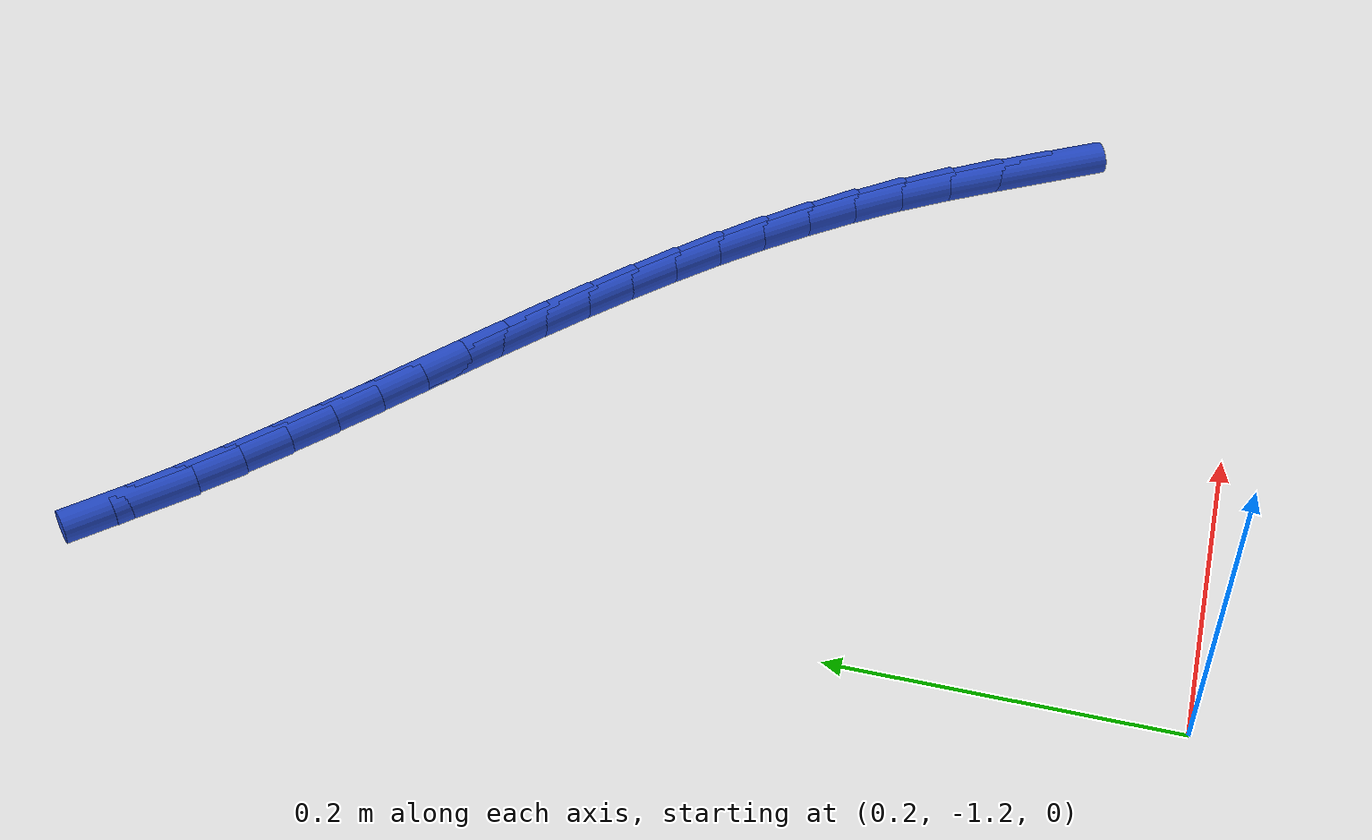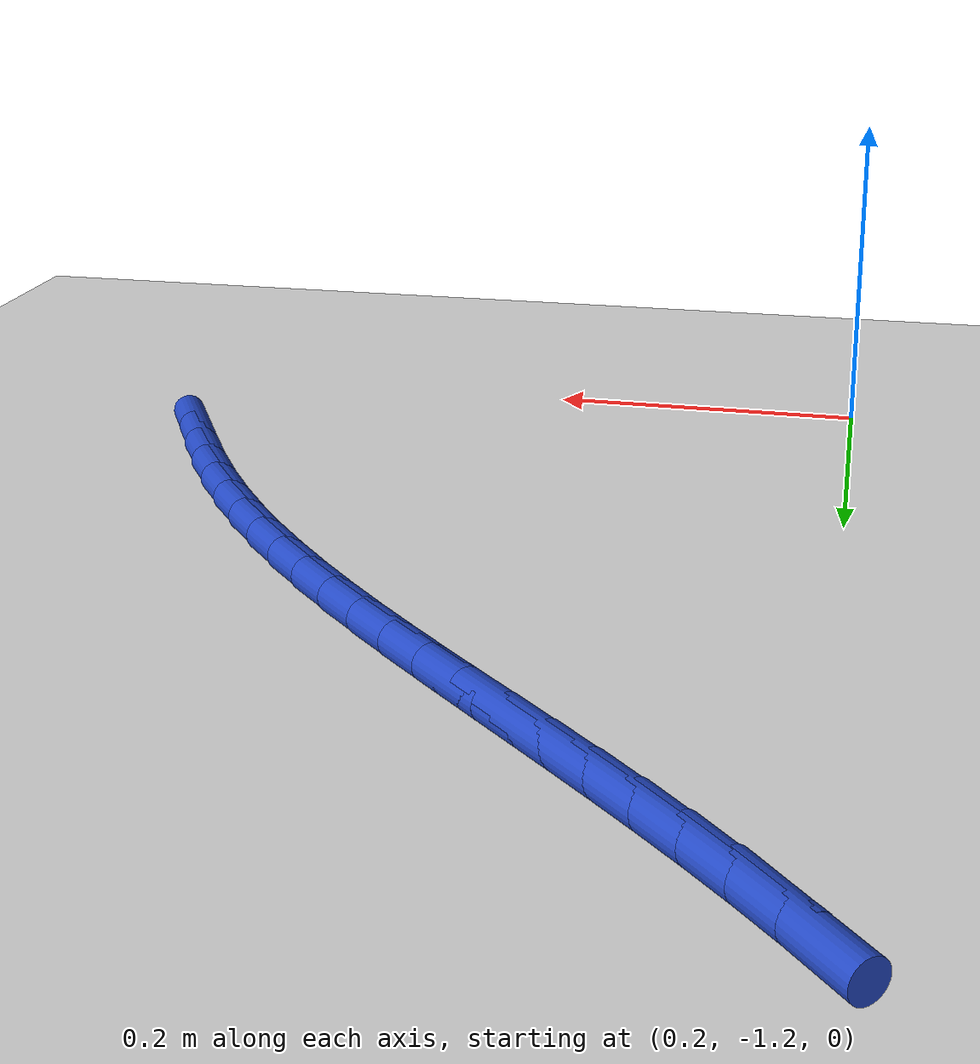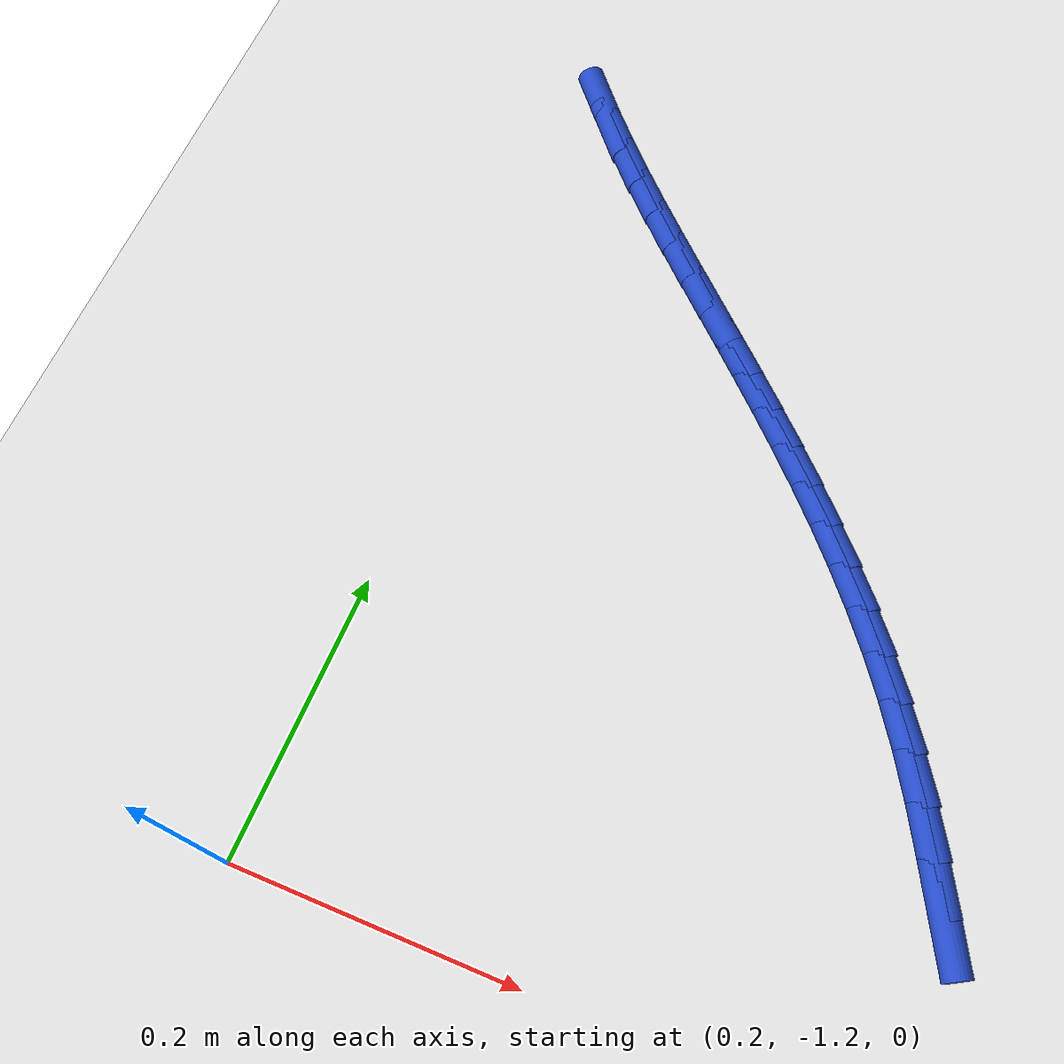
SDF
<sdf version="1.6">
 <world name="default">
  <model name="ground_plane">
   <static>1</static>
   <link name="link">
    <collision name="collision">
     <geometry><plane><normal>0 0 1</normal><size>100 100</size></plane></geometry>
     <surface><friction><ode><mu>100</mu><mu2>50</mu2></ode></friction></surface>
    </collision>
    <visual name="visual">
     <cast_shadows>0</cast_shadows>
     <geometry><plane><normal>0 0 1</normal><size>100 100</size></plane></geometry>
     <material>
      <script><uri>file://media/materials/scripts/gazebo.material</uri><name>Gazebo/WhiteGlow</name></script>
     </material>
    </visual>
   </link>
  </model>
  <model name="line">
   <link name="link_209">
    <pose>0.6203731516248925 -1.063057669267999 0.01 0 1.57 -1.0707983914013521</pose>
    <collision name="collision">
     <geometry><cylinder><radius>0.01</radius><length>0.08</length></cylinder></geometry>
    </collision>
    <visual name="visual">
     <material>
      <script><name>Gazebo/Blue</name><uri>file://media/materials/scripts/gazebo.material</uri></script>
     </material>
     <geometry><cylinder><radius>0.01</radius><length>0.08</length></cylinder></geometry>
    </visual>
   </link>
   <link name="link_210">
    <pose>0.604092793582709 -1.0332565275285965 0.01 0 1.57 -1.0583589329761591</pose>
    <collision name="collision">
     <geometry><cylinder><radius>0.01</radius><length>0.08</length></cylinder></geometry>
    </collision>
    <visual name="visual">
     <material>
      <script><name>Gazebo/Blue</name><uri>file://media/materials/scripts/gazebo.material</uri></script>
     </material>
     <geometry><cylinder><radius>0.01</radius><length>0.08</length></cylinder></geometry>
    </visual>
   </link>
   <link name="link_211">
    <pose>0.5874419208706827 -1.0036582963922687 0.01 0 1.57 -1.0242771175852132</pose>
    <collision name="collision">
     <geometry><cylinder><radius>0.01</radius><length>0.08</length></cylinder></geometry>
    </collision>
    <visual name="visual">
     <material>
      <script><name>Gazebo/Blue</name><uri>file://media/materials/scripts/gazebo.material</uri></script>
     </material>
     <geometry><cylinder><radius>0.01</radius><length>0.08</length></cylinder></geometry>
    </visual>
   </link>
   <link name="link_212">
    <pose>0.5700037158380474 -0.9749924167833562 0.01 0 1.57 -0.9805514912286557</pose>
    <collision name="collision">
     <geometry><cylinder><radius>0.01</radius><length>0.08</length></cylinder></geometry>
    </collision>
    <visual name="visual">
     <material>
      <script><name>Gazebo/Blue</name><uri>file://media/materials/scripts/gazebo.material</uri></script>
     </material>
     <geometry><cylinder><radius>0.01</radius><length>0.08</length></cylinder></geometry>
    </visual>
   </link>
   <link name="link_213">
    <pose>0.5516258335839408 -0.9475590689980847 0.01 0 1.57 -0.9393183456589554</pose>
    <collision name="collision">
     <geometry><cylinder><radius>0.01</radius><length>0.08</length></cylinder></geometry>
    </collision>
    <visual name="visual">
     <material>
      <script><name>Gazebo/Blue</name><uri>file://media/materials/scripts/gazebo.material</uri></script>
     </material>
     <geometry><cylinder><radius>0.01</radius><length>0.08</length></cylinder></geometry>
    </visual>
   </link>
   <link name="link_214">
    <pose>0.5323967401090087 -0.9212675777950992 0.01 0 1.57 -0.9014046441339456</pose>
    <collision name="collision">
     <geometry><cylinder><radius>0.01</radius><length>0.08</length></cylinder></geometry>
    </collision>
    <visual name="visual">
     <material>
      <script><name>Gazebo/Blue</name><uri>file://media/materials/scripts/gazebo.material</uri></script>
     </material>
     <geometry><cylinder><radius>0.01</radius><length>0.08</length></cylinder></geometry>
    </visual>
   </link>
   <link name="link_215">
    <pose>0.5124136906743756 -0.8960130022535933 0.01 0 1.57 -0.8671253700864502</pose>
    <collision name="collision">
     <geometry><cylinder><radius>0.01</radius><length>0.08</length></cylinder></geometry>
    </collision>
    <visual name="visual">
     <material>
      <script><name>Gazebo/Blue</name><uri>file://media/materials/scripts/gazebo.material</uri></script>
     </material>
     <geometry><cylinder><radius>0.01</radius><length>0.08</length></cylinder></geometry>
    </visual>
   </link>
   <link name="link_216">
    <pose>0.4917739405411661 -0.8716904014527611 0.01 0 1.57 -0.836732007010478</pose>
    <collision name="collision">
     <geometry><cylinder><radius>0.01</radius><length>0.08</length></cylinder></geometry>
    </collision>
    <visual name="visual">
     <material>
      <script><name>Gazebo/Blue</name><uri>file://media/materials/scripts/gazebo.material</uri></script>
     </material>
     <geometry><cylinder><radius>0.01</radius><length>0.08</length></cylinder></geometry>
    </visual>
   </link>
   <link name="link_217">
    <pose>0.47057474497050467 -0.8481948344717963 0.01 0 1.57 -0.8104203246803031</pose>
    <collision name="collision">
     <geometry><cylinder><radius>0.01</radius><length>0.08</length></cylinder></geometry>
    </collision>
    <visual name="visual">
     <material>
      <script><name>Gazebo/Blue</name><uri>file://media/materials/scripts/gazebo.material</uri></script>
     </material>
     <geometry><cylinder><radius>0.01</radius><length>0.08</length></cylinder></geometry>
    </visual>
   </link>
   <link name="link_218">
    <pose>0.448913359223516 -0.8254213603898928 0.01 0 1.57 -0.7883405194485543</pose>
    <collision name="collision">
     <geometry><cylinder><radius>0.01</radius><length>0.08</length></cylinder></geometry>
    </collision>
    <visual name="visual">
     <material>
      <script><name>Gazebo/Blue</name><uri>file://media/materials/scripts/gazebo.material</uri></script>
     </material>
     <geometry><cylinder><radius>0.01</radius><length>0.08</length></cylinder></geometry>
    </visual>
   </link>
   <link name="link_219">
    <pose>0.4268870385613246 -0.8032650382862445 0.01 0 1.57 -0.7706082267535409</pose>
    <collision name="collision">
     <geometry><cylinder><radius>0.01</radius><length>0.08</length></cylinder></geometry>
    </collision>
    <visual name="visual">
     <material>
      <script><name>Gazebo/Blue</name><uri>file://media/materials/scripts/gazebo.material</uri></script>
     </material>
     <geometry><cylinder><radius>0.01</radius><length>0.08</length></cylinder></geometry>
    </visual>
   </link>
   <link name="link_220">
    <pose>0.4045930382450548 -0.7816209272400448 0.01 0 1.57 -0.7573151993728119</pose>
    <collision name="collision">
     <geometry><cylinder><radius>0.01</radius><length>0.08</length></cylinder></geometry>
    </collision>
    <visual name="visual">
     <material>
      <script><name>Gazebo/Blue</name><uri>file://media/materials/scripts/gazebo.material</uri></script>
     </material>
     <geometry><cylinder><radius>0.01</radius><length>0.08</length></cylinder></geometry>
    </visual>
   </link>
   <link name="link_221">
    <pose>0.38212861353583155 -0.7603840863304883 0.01 0 1.57 -0.7485387550286582</pose>
    <collision name="collision">
     <geometry><cylinder><radius>0.01</radius><length>0.08</length></cylinder></geometry>
    </collision>
    <visual name="visual">
     <material>
      <script><name>Gazebo/Blue</name><uri>file://media/materials/scripts/gazebo.material</uri></script>
     </material>
     <geometry><cylinder><radius>0.01</radius><length>0.08</length></cylinder></geometry>
    </visual>
   </link>
   <link name="link_222">
    <pose>0.3595910196947791 -0.7394495746367682 0.01 0 1.57 -0.7443493644037043</pose>
    <collision name="collision">
     <geometry><cylinder><radius>0.01</radius><length>0.08</length></cylinder></geometry>
    </collision>
    <visual name="visual">
     <material>
      <script><name>Gazebo/Blue</name><uri>file://media/materials/scripts/gazebo.material</uri></script>
     </material>
     <geometry><cylinder><radius>0.01</radius><length>0.08</length></cylinder></geometry>
    </visual>
   </link>
   <link name="link_223">
    <pose>0.337077511983022 -0.7187124512380784 0.01 0 1.57 -0.7448159372754016</pose>
    <collision name="collision">
     <geometry><cylinder><radius>0.01</radius><length>0.08</length></cylinder></geometry>
    </collision>
    <visual name="visual">
     <material>
      <script><name>Gazebo/Blue</name><uri>file://media/materials/scripts/gazebo.material</uri></script>
     </material>
     <geometry><cylinder><radius>0.01</radius><length>0.08</length></cylinder></geometry>
    </visual>
   </link>
   <link name="link_224">
    <pose>0.3146853456616849 -0.6980677752136131 0.01 0 1.57 -0.7500084640675926</pose>
    <collision name="collision">
     <geometry><cylinder><radius>0.01</radius><length>0.08</length></cylinder></geometry>
    </collision>
    <visual name="visual">
     <material>
      <script><name>Gazebo/Blue</name><uri>file://media/materials/scripts/gazebo.material</uri></script>
     </material>
     <geometry><cylinder><radius>0.01</radius><length>0.08</length></cylinder></geometry>
    </visual>
   </link>
   <link name="link_225">
    <pose>0.2925117759918923 -0.6774106056425657 0.01 0 1.57 -0.759997698976861</pose>
    <collision name="collision">
     <geometry><cylinder><radius>0.01</radius><length>0.08</length></cylinder></geometry>
    </collision>
    <visual name="visual">
     <material>
      <script><name>Gazebo/Blue</name><uri>file://media/materials/scripts/gazebo.material</uri></script>
     </material>
     <geometry><cylinder><radius>0.01</radius><length>0.08</length></cylinder></geometry>
    </visual>
   </link>
   <link name="link_226">
    <pose>0.2706540582347687 -0.6566360016041304 0.01 0 1.57 -0.7748515613573365</pose>
    <collision name="collision">
     <geometry><cylinder><radius>0.01</radius><length>0.08</length></cylinder></geometry>
    </collision>
    <visual name="visual">
     <material>
      <script><name>Gazebo/Blue</name><uri>file://media/materials/scripts/gazebo.material</uri></script>
     </material>
     <geometry><cylinder><radius>0.01</radius><length>0.08</length></cylinder></geometry>
    </visual>
   </link>
   <link name="link_227">
    <pose>0.24920944765143876 -0.6356390221775009 0.01 0 1.57 -0.7946279303377484</pose>
    <collision name="collision">
     <geometry><cylinder><radius>0.01</radius><length>0.08</length></cylinder></geometry>
    </collision>
    <visual name="visual">
     <material>
      <script><name>Gazebo/Blue</name><uri>file://media/materials/scripts/gazebo.material</uri></script>
     </material>
     <geometry><cylinder><radius>0.01</radius><length>0.08</length></cylinder></geometry>
    </visual>
   </link>
   <link name="link_228">
    <pose>0.22827519950302694 -0.614314726441871 0.01 0 1.57 -0.8193635737682979</pose>
    <collision name="collision">
     <geometry><cylinder><radius>0.01</radius><length>0.08</length></cylinder></geometry>
    </collision>
    <visual name="visual">
     <material>
      <script><name>Gazebo/Blue</name><uri>file://media/materials/scripts/gazebo.material</uri></script>
     </material>
     <geometry><cylinder><radius>0.01</radius><length>0.08</length></cylinder></geometry>
    </visual>
   </link>
   <link name="link_229">
    <pose>0.2079485690506578 -0.5925581734764346 0.01 0 1.57 -0.8490591594696979</pose>
    <collision name="collision">
     <geometry><cylinder><radius>0.01</radius><length>0.08</length></cylinder></geometry>
    </collision>
    <visual name="visual">
     <material>
      <script><name>Gazebo/Blue</name><uri>file://media/materials/scripts/gazebo.material</uri></script>
     </material>
     <geometry><cylinder><radius>0.01</radius><length>0.08</length></cylinder></geometry>
    </visual>
   </link>
  </model>
 </world>
</sdf>
